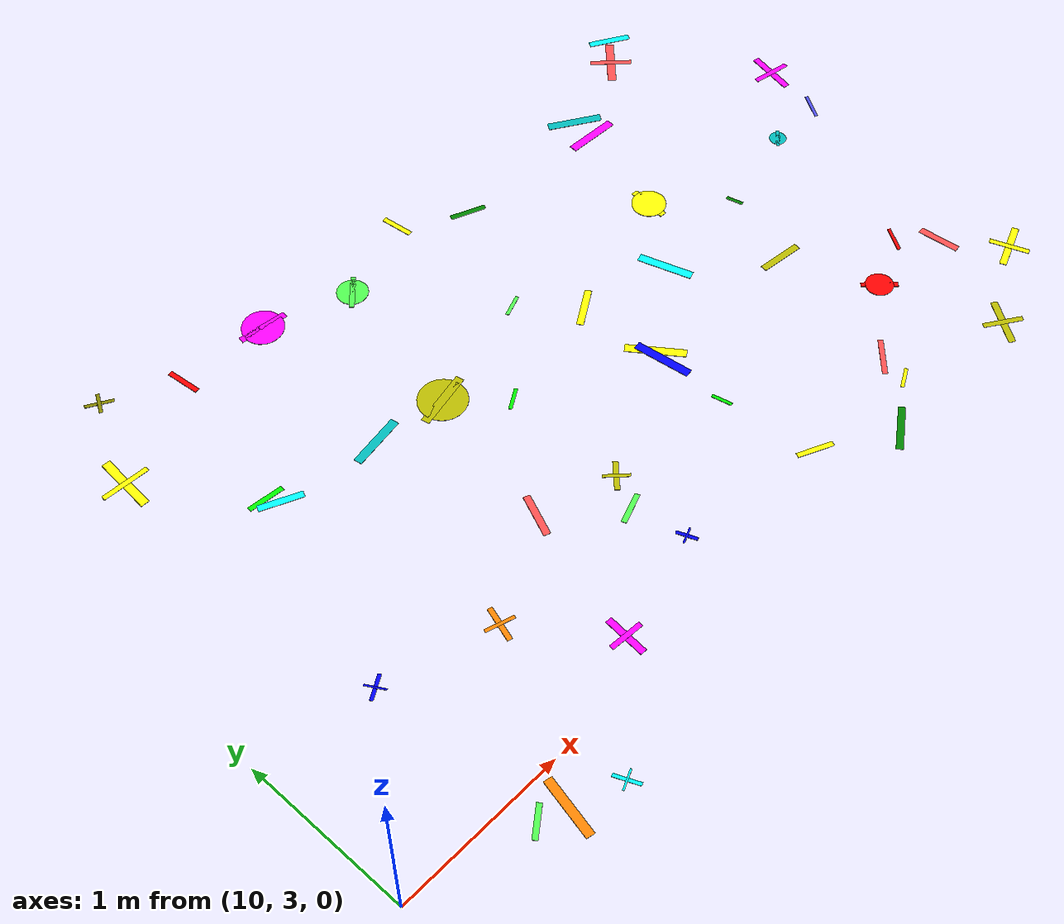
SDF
<sdf version="1.6">
 <world name="default">
  <model name="letter_R_1977">
   <static>true</static>
   <pose>10.71 2.84 0.011 0 0 3.788</pose>
   <link name="link">
    <visual name="visual">
     <geometry><box><size>0.19 0.03 0.002</size></box></geometry>
     <material>
      <ambient>0.3 1.0 0.3 1</ambient>
      <diffuse>0.3 1.0 0.3 1</diffuse>
      <specular>0.1 0.1 0.1 1</specular>
     </material>
    </visual>
   </link>
  </model>
  <model name="letter_N_1978">
   <static>true</static>
   <pose>10.86 2.78 0.012 0 0 1.360</pose>
   <link name="link">
    <visual name="visual">
     <geometry><box><size>0.35 0.05 0.002</size></box></geometry>
     <material>
      <ambient>1.0 0.5 0.0 1</ambient>
      <diffuse>1.0 0.5 0.0 1</diffuse>
      <specular>0.1 0.1 0.1 1</specular>
     </material>
    </visual>
   </link>
  </model>
  <model name="letter_L_1979">
   <static>true</static>
   <pose>11.15 2.68 0.006 0 0 1.985</pose>
   <link name="link">
    <visual name="visual">
     <geometry><box><size>0.15 0.02 0.002</size></box></geometry>
     <material>
      <ambient>0.0 1.0 1.0 1</ambient>
      <diffuse>0.0 1.0 1.0 1</diffuse>
      <specular>0.1 0.1 0.1 1</specular>
     </material>
    </visual>
    <visual name="visual2">
     <pose>0 0 0.001 0 0 1.57</pose>
     <geometry><box><size>0.12 0.01 0.001</size></box></geometry>
     <material><ambient>0.0 1.0 1.0 1</ambient><diffuse>0.0 1.0 1.0 1</diffuse></material>
    </visual>
   </link>
  </model>
  <model name="letter_L_1980">
   <static>true</static>
   <pose>11.35 3.70 0.007 0 0 1.274</pose>
   <link name="link">
    <visual name="visual">
     <geometry><box><size>0.21 0.03 0.002</size></box></geometry>
     <material>
      <ambient>1.0 0.5 0.0 1</ambient>
      <diffuse>1.0 0.5 0.0 1</diffuse>
      <specular>0.1 0.1 0.1 1</specular>
     </material>
    </visual>
    <visual name="visual2">
     <pose>0 0 0.001 0 0 1.57</pose>
     <geometry><box><size>0.17 0.02 0.001</size></box></geometry>
     <material><ambient>1.0 0.5 0.0 1</ambient><diffuse>1.0 0.5 0.0 1</diffuse></material>
    </visual>
   </link>
  </model>
  <model name="letter_F_1981">
   <static>true</static>
   <pose>10.69 3.89 0.009 0 0 3.674</pose>
   <link name="link">
    <visual name="visual">
     <geometry><box><size>0.15 0.02 0.002</size></box></geometry>
     <material>
      <ambient>0.0 0.0 1.0 1</ambient>
      <diffuse>0.0 0.0 1.0 1</diffuse>
      <specular>0.1 0.1 0.1 1</specular>
     </material>
    </visual>
    <visual name="visual2">
     <pose>0 0 0.001 0 0 1.57</pose>
     <geometry><box><size>0.12 0.01 0.001</size></box></geometry>
     <material><ambient>0.0 0.0 1.0 1</ambient><diffuse>0.0 0.0 1.0 1</diffuse></material>
    </visual>
   </link>
  </model>
  <model name="letter_X_1982">
   <static>true</static>
   <pose>11.11 5.03 0.009 0 0 2.706</pose>
   <link name="link">
    <visual name="visual">
     <geometry><box><size>0.25 0.04 0.002</size></box></geometry>
     <material>
      <ambient>0.0 1.0 1.0 1</ambient>
      <diffuse>0.0 1.0 1.0 1</diffuse>
      <specular>0.1 0.1 0.1 1</specular>
     </material>
    </visual>
   </link>
  </model>
  <model name="letter_X_1983">
   <static>true</static>
   <pose>11.07 5.10 0.005 0 0 3.029</pose>
   <link name="link">
    <visual name="visual">
     <geometry><box><size>0.21 0.03 0.002</size></box></geometry>
     <material>
      <ambient>0.0 1.0 0.0 1</ambient>
      <diffuse>0.0 1.0 0.0 1</diffuse>
      <specular>0.1 0.1 0.1 1</specular>
     </material>
    </visual>
   </link>
  </model>
  <model name="letter_H_1984">
   <static>true</static>
   <pose>10.88 6.21 0.004 0 0 2.612</pose>
   <link name="link">
    <visual name="visual">
     <geometry><box><size>0.16 0.02 0.002</size></box></geometry>
     <material>
      <ambient>0.5 0.5 0.0 1</ambient>
      <diffuse>0.5 0.5 0.0 1</diffuse>
      <specular>0.1 0.1 0.1 1</specular>
     </material>
    </visual>
    <visual name="visual2">
     <pose>0 0 0.001 0 0 1.57</pose>
     <geometry><box><size>0.13 0.02 0.001</size></box></geometry>
     <material><ambient>0.5 0.5 0.0 1</ambient><diffuse>0.5 0.5 0.0 1</diffuse></material>
    </visual>
   </link>
  </model>
  <model name="letter_E_1985">
   <static>true</static>
   <pose>10.64 5.70 0.009 0 0 4.642</pose>
   <link name="link">
    <visual name="visual">
     <geometry><box><size>0.35 0.05 0.002</size></box></geometry>
     <material>
      <ambient>1.0 1.0 0.0 1</ambient>
      <diffuse>1.0 1.0 0.0 1</diffuse>
      <specular>0.1 0.1 0.1 1</specular>
     </material>
    </visual>
    <visual name="visual2">
     <pose>0 0 0.001 0 0 1.57</pose>
     <geometry><box><size>0.28 0.03 0.001</size></box></geometry>
     <material><ambient>1.0 1.0 0.0 1</ambient><diffuse>1.0 1.0 0.0 1</diffuse></material>
    </visual>
   </link>
  </model>
  <model name="letter_K_1986">
   <static>true</static>
   <pose>11.28 5.99 0.008 0 0 1.677</pose>
   <link name="link">
    <visual name="visual">
     <geometry><box><size>0.20 0.03 0.002</size></box></geometry>
     <material>
      <ambient>1.0 0.0 0.0 1</ambient>
      <diffuse>1.0 0.0 0.0 1</diffuse>
      <specular>0.1 0.1 0.1 1</specular>
     </material>
    </visual>
   </link>
  </model>
  <model name="letter_E_2049">
   <static>true</static>
   <pose>11.72 3.20 0.009 0 0 4.638</pose>
   <link name="link">
    <visual name="visual">
     <geometry><box><size>0.25 0.04 0.002</size></box></geometry>
     <material>
      <ambient>1.0 0.0 1.0 1</ambient>
      <diffuse>1.0 0.0 1.0 1</diffuse>
      <specular>0.1 0.1 0.1 1</specular>
     </material>
    </visual>
    <visual name="visual2">
     <pose>0 0 0.001 0 0 1.57</pose>
     <geometry><box><size>0.20 0.03 0.001</size></box></geometry>
     <material><ambient>1.0 0.0 1.0 1</ambient><diffuse>1.0 0.0 1.0 1</diffuse></material>
    </visual>
   </link>
  </model>
  <model name="letter_H_2051">
   <static>true</static>
   <pose>12.37 3.37 0.003 0 0 1.952</pose>
   <link name="link">
    <visual name="visual">
     <geometry><box><size>0.12 0.02 0.002</size></box></geometry>
     <material>
      <ambient>0.0 0.0 1.0 1</ambient>
      <diffuse>0.0 0.0 1.0 1</diffuse>
      <specular>0.1 0.1 0.1 1</specular>
     </material>
    </visual>
    <visual name="visual2">
     <pose>0 0 0.001 0 0 1.57</pose>
     <geometry><box><size>0.10 0.01 0.001</size></box></geometry>
     <material><ambient>0.0 0.0 1.0 1</ambient><diffuse>0.0 0.0 1.0 1</diffuse></material>
    </visual>
   </link>
  </model>
  <model name="letter_D_2052">
   <static>true</static>
   <pose>12.30 3.69 0.005 0 0 3.494</pose>
   <link name="link">
    <visual name="visual">
     <geometry><box><size>0.19 0.03 0.002</size></box></geometry>
     <material>
      <ambient>0.3 1.0 0.3 1</ambient>
      <diffuse>0.3 1.0 0.3 1</diffuse>
      <specular>0.1 0.1 0.1 1</specular>
     </material>
    </visual>
   </link>
  </model>
  <model name="letter_I_2053">
   <static>true</static>
   <pose>12.40 3.88 0.007 0 0 0.793</pose>
   <link name="link">
    <visual name="visual">
     <geometry><box><size>0.18 0.03 0.002</size></box></geometry>
     <material>
      <ambient>0.7 0.7 0.0 1</ambient>
      <diffuse>0.7 0.7 0.0 1</diffuse>
      <specular>0.1 0.1 0.1 1</specular>
     </material>
    </visual>
    <visual name="visual2">
     <pose>0 0 0.001 0 0 1.57</pose>
     <geometry><box><size>0.15 0.02 0.001</size></box></geometry>
     <material><ambient>0.7 0.7 0.0 1</ambient><diffuse>0.7 0.7 0.0 1</diffuse></material>
    </visual>
   </link>
  </model>
  <model name="letter_J_2054">
   <static>true</static>
   <pose>11.94 4.01 0.008 0 0 1.182</pose>
   <link name="link">
    <visual name="visual">
     <geometry><box><size>0.26 0.04 0.002</size></box></geometry>
     <material>
      <ambient>1.0 0.3 0.3 1</ambient>
      <diffuse>1.0 0.3 0.3 1</diffuse>
      <specular>0.1 0.1 0.1 1</specular>
     </material>
    </visual>
   </link>
  </model>
  <model name="letter_Q_2055">
   <static>true</static>
   <pose>12.14 4.89 0.004 0 0 3.350</pose>
   <link name="link">
    <visual name="visual">
     <geometry><box><size>0.34 0.05 0.002</size></box></geometry>
     <material>
      <ambient>0.7 0.7 0.0 1</ambient>
      <diffuse>0.7 0.7 0.0 1</diffuse>
      <specular>0.1 0.1 0.1 1</specular>
     </material>
    </visual>
    <visual name="visual2">
     <geometry><cylinder><radius>0.14</radius><length>0.002</length></cylinder></geometry>
     <material><ambient>0.7 0.7 0.0 1</ambient><diffuse>0.7 0.7 0.0 1</diffuse></material>
    </visual>
   </link>
  </model>
  <model name="letter_Z_2056">
   <static>true</static>
   <pose>12.40 4.62 0.004 0 0 0.543</pose>
   <link name="link">
    <visual name="visual">
     <geometry><box><size>0.14 0.02 0.002</size></box></geometry>
     <material>
      <ambient>0.0 1.0 0.0 1</ambient>
      <diffuse>0.0 1.0 0.0 1</diffuse>
      <specular>0.1 0.1 0.1 1</specular>
     </material>
    </visual>
   </link>
  </model>
  <model name="letter_D_2057">
   <static>true</static>
   <pose>11.71 4.95 0.003 0 0 3.293</pose>
   <link name="link">
    <visual name="visual">
     <geometry><box><size>0.32 0.05 0.002</size></box></geometry>
     <material>
      <ambient>0.0 0.7 0.7 1</ambient>
      <diffuse>0.0 0.7 0.7 1</diffuse>
      <specular>0.1 0.1 0.1 1</specular>
     </material>
    </visual>
   </link>
  </model>
  <model name="letter_G_2058">
   <static>true</static>
   <pose>11.82 5.96 0.011 0 0 6.152</pose>
   <link name="link">
    <visual name="visual">
     <geometry><box><size>0.29 0.04 0.002</size></box></geometry>
     <material>
      <ambient>1.0 0.0 1.0 1</ambient>
      <diffuse>1.0 0.0 1.0 1</diffuse>
      <specular>0.1 0.1 0.1 1</specular>
     </material>
    </visual>
    <visual name="visual2">
     <geometry><cylinder><radius>0.12</radius><length>0.002</length></cylinder></geometry>
     <material><ambient>1.0 0.0 1.0 1</ambient><diffuse>1.0 0.0 1.0 1</diffuse></material>
    </visual>
   </link>
  </model>
  <model name="letter_Q_2059">
   <static>true</static>
   <pose>12.33 5.79 0.006 0 0 3.908</pose>
   <link name="link">
    <visual name="visual">
     <geometry><box><size>0.22 0.03 0.002</size></box></geometry>
     <material>
      <ambient>0.3 1.0 0.3 1</ambient>
      <diffuse>0.3 1.0 0.3 1</diffuse>
      <specular>0.1 0.1 0.1 1</specular>
     </material>
    </visual>
    <visual name="visual2">
     <geometry><cylinder><radius>0.09</radius><length>0.002</length></cylinder></geometry>
     <material><ambient>0.3 1.0 0.3 1</ambient><diffuse>0.3 1.0 0.3 1</diffuse></material>
    </visual>
   </link>
  </model>
  <model name="letter_V_2131">
   <static>true</static>
   <pose>13.23 3.23 0.009 0 0 2.707</pose>
   <link name="link">
    <visual name="visual">
     <geometry><box><size>0.21 0.03 0.002</size></box></geometry>
     <material>
      <ambient>1.0 1.0 0.0 1</ambient>
      <diffuse>1.0 1.0 0.0 1</diffuse>
      <specular>0.1 0.1 0.1 1</specular>
     </material>
    </visual>
   </link>
  </model>
  <model name="letter_M_2132">
   <static>true</static>
   <pose>13.15 3.80 0.005 0 0 4.944</pose>
   <link name="link">
    <visual name="visual">
     <geometry><box><size>0.12 0.02 0.002</size></box></geometry>
     <material>
      <ambient>0.0 1.0 0.0 1</ambient>
      <diffuse>0.0 1.0 0.0 1</diffuse>
      <specular>0.1 0.1 0.1 1</specular>
     </material>
    </visual>
   </link>
  </model>
  <model name="letter_K_2133">
   <static>true</static>
   <pose>13.16 4.28 0.009 0 0 5.344</pose>
   <link name="link">
    <visual name="visual">
     <geometry><box><size>0.34 0.05 0.002</size></box></geometry>
     <material>
      <ambient>1.0 1.0 0.0 1</ambient>
      <diffuse>1.0 1.0 0.0 1</diffuse>
      <specular>0.1 0.1 0.1 1</specular>
     </material>
    </visual>
   </link>
  </model>
  <model name="letter_K_2134">
   <static>true</static>
   <pose>13.14 4.21 0.012 0 0 1.706</pose>
   <link name="link">
    <visual name="visual">
     <geometry><box><size>0.34 0.05 0.002</size></box></geometry>
     <material>
      <ambient>0.0 0.0 1.0 1</ambient>
      <diffuse>0.0 0.0 1.0 1</diffuse>
      <specular>0.1 0.1 0.1 1</specular>
     </material>
    </visual>
   </link>
  </model>
  <model name="letter_K_2135">
   <static>true</static>
   <pose>13.12 4.77 0.011 0 0 3.701</pose>
   <link name="link">
    <visual name="visual">
     <geometry><box><size>0.25 0.04 0.002</size></box></geometry>
     <material>
      <ambient>1.0 1.0 0.0 1</ambient>
      <diffuse>1.0 1.0 0.0 1</diffuse>
      <specular>0.1 0.1 0.1 1</specular>
     </material>
    </visual>
   </link>
  </model>
  <model name="letter_D_2136">
   <static>true</static>
   <pose>12.86 5.07 0.010 0 0 0.356</pose>
   <link name="link">
    <visual name="visual">
     <geometry><box><size>0.14 0.02 0.002</size></box></geometry>
     <material>
      <ambient>0.3 1.0 0.3 1</ambient>
      <diffuse>0.3 1.0 0.3 1</diffuse>
      <specular>0.1 0.1 0.1 1</specular>
     </material>
    </visual>
   </link>
  </model>
  <model name="letter_N_2138">
   <static>true</static>
   <pose>12.84 5.96 0.009 0 0 4.835</pose>
   <link name="link">
    <visual name="visual">
     <geometry><box><size>0.19 0.03 0.002</size></box></geometry>
     <material>
      <ambient>1.0 1.0 0.0 1</ambient>
      <diffuse>1.0 1.0 0.0 1</diffuse>
      <specular>0.1 0.1 0.1 1</specular>
     </material>
    </visual>
   </link>
  </model>
  <model name="letter_U_2139">
   <static>true</static>
   <pose>13.19 5.74 0.012 0 0 2.742</pose>
   <link name="link">
    <visual name="visual">
     <geometry><box><size>0.21 0.03 0.002</size></box></geometry>
     <material>
      <ambient>0.0 0.5 0.0 1</ambient>
      <diffuse>0.0 0.5 0.0 1</diffuse>
      <specular>0.1 0.1 0.1 1</specular>
     </material>
    </visual>
   </link>
  </model>
  <model name="letter_V_2207">
   <static>true</static>
   <pose>13.96 3.35 0.013 0 0 0.765</pose>
   <link name="link">
    <visual name="visual">
     <geometry><box><size>0.23 0.03 0.002</size></box></geometry>
     <material>
      <ambient>1.0 0.3 0.3 1</ambient>
      <diffuse>1.0 0.3 0.3 1</diffuse>
      <specular>0.1 0.1 0.1 1</specular>
     </material>
    </visual>
   </link>
  </model>
  <model name="letter_R_2208">
   <static>true</static>
   <pose>13.93 3.18 0.006 0 0 0.490</pose>
   <link name="link">
    <visual name="visual">
     <geometry><box><size>0.13 0.02 0.002</size></box></geometry>
     <material>
      <ambient>1.0 1.0 0.0 1</ambient>
      <diffuse>1.0 1.0 0.0 1</diffuse>
      <specular>0.1 0.1 0.1 1</specular>
     </material>
    </visual>
   </link>
  </model>
  <model name="letter_M_2209">
   <static>true</static>
   <pose>13.65 2.99 0.003 0 0 3.748</pose>
   <link name="link">
    <visual name="visual">
     <geometry><box><size>0.28 0.04 0.002</size></box></geometry>
     <material>
      <ambient>0.0 0.5 0.0 1</ambient>
      <diffuse>0.0 0.5 0.0 1</diffuse>
      <specular>0.1 0.1 0.1 1</specular>
     </material>
    </visual>
   </link>
  </model>
  <model name="letter_Q_2210">
   <static>true</static>
   <pose>14.36 3.68 0.010 0 0 2.325</pose>
   <link name="link">
    <visual name="visual">
     <geometry><box><size>0.21 0.03 0.002</size></box></geometry>
     <material>
      <ambient>1.0 0.0 0.0 1</ambient>
      <diffuse>1.0 0.0 0.0 1</diffuse>
      <specular>0.1 0.1 0.1 1</specular>
     </material>
    </visual>
    <visual name="visual2">
     <geometry><cylinder><radius>0.08</radius><length>0.002</length></cylinder></geometry>
     <material><ambient>1.0 0.0 0.0 1</ambient><diffuse>1.0 0.0 0.0 1</diffuse></material>
    </visual>
   </link>
  </model>
  <model name="letter_P_2211">
   <static>true</static>
   <pose>14.14 4.21 0.012 0 0 3.020</pose>
   <link name="link">
    <visual name="visual">
     <geometry><box><size>0.26 0.04 0.002</size></box></geometry>
     <material>
      <ambient>0.7 0.7 0.0 1</ambient>
      <diffuse>0.7 0.7 0.0 1</diffuse>
      <specular>0.1 0.1 0.1 1</specular>
     </material>
    </visual>
   </link>
  </model>
  <model name="letter_V_2212">
   <static>true</static>
   <pose>14.30 4.68 0.011 0 0 4.970</pose>
   <link name="link">
    <visual name="visual">
     <geometry><box><size>0.10 0.02 0.002</size></box></geometry>
     <material>
      <ambient>0.0 0.5 0.0 1</ambient>
      <diffuse>0.0 0.5 0.0 1</diffuse>
      <specular>0.1 0.1 0.1 1</specular>
     </material>
    </visual>
   </link>
  </model>
  <model name="letter_R_2213">
   <static>true</static>
   <pose>13.65 4.64 0.012 0 0 5.022</pose>
   <link name="link">
    <visual name="visual">
     <geometry><box><size>0.32 0.05 0.002</size></box></geometry>
     <material>
      <ambient>0.0 1.0 1.0 1</ambient>
      <diffuse>0.0 1.0 1.0 1</diffuse>
      <specular>0.1 0.1 0.1 1</specular>
     </material>
    </visual>
   </link>
  </model>
  <model name="letter_G_2214">
   <static>true</static>
   <pose>13.95 5.03 0.005 0 0 1.492</pose>
   <link name="link">
    <visual name="visual">
     <geometry><box><size>0.24 0.04 0.002</size></box></geometry>
     <material>
      <ambient>1.0 1.0 0.0 1</ambient>
      <diffuse>1.0 1.0 0.0 1</diffuse>
      <specular>0.1 0.1 0.1 1</specular>
     </material>
    </visual>
    <visual name="visual2">
     <geometry><cylinder><radius>0.10</radius><length>0.002</length></cylinder></geometry>
     <material><ambient>1.0 1.0 0.0 1</ambient><diffuse>1.0 1.0 0.0 1</diffuse></material>
    </visual>
   </link>
  </model>
  <model name="letter_K_2215">
   <static>true</static>
   <pose>14.13 5.64 0.004 0 0 6.229</pose>
   <link name="link">
    <visual name="visual">
     <geometry><box><size>0.31 0.05 0.002</size></box></geometry>
     <material>
      <ambient>1.0 0.0 1.0 1</ambient>
      <diffuse>1.0 0.0 1.0 1</diffuse>
      <specular>0.1 0.1 0.1 1</specular>
     </material>
    </visual>
   </link>
  </model>
  <model name="letter_R_2216">
   <static>true</static>
   <pose>14.14 5.79 0.008 0 0 5.718</pose>
   <link name="link">
    <visual name="visual">
     <geometry><box><size>0.32 0.05 0.002</size></box></geometry>
     <material>
      <ambient>0.0 0.7 0.7 1</ambient>
      <diffuse>0.0 0.7 0.7 1</diffuse>
      <specular>0.1 0.1 0.1 1</specular>
     </material>
    </visual>
   </link>
  </model>
  <model name="letter_E_2288">
   <static>true</static>
   <pose>15.09 3.32 0.005 0 0 3.512</pose>
   <link name="link">
    <visual name="visual">
     <geometry><box><size>0.29 0.04 0.002</size></box></geometry>
     <material>
      <ambient>1.0 1.0 0.0 1</ambient>
      <diffuse>1.0 1.0 0.0 1</diffuse>
      <specular>0.1 0.1 0.1 1</specular>
     </material>
    </visual>
    <visual name="visual2">
     <pose>0 0 0.001 0 0 1.57</pose>
     <geometry><box><size>0.23 0.03 0.001</size></box></geometry>
     <material><ambient>1.0 1.0 0.0 1</ambient><diffuse>1.0 1.0 0.0 1</diffuse></material>
    </visual>
   </link>
  </model>
  <model name="letter_T_2289">
   <static>true</static>
   <pose>14.61 3.02 0.004 0 0 4.118</pose>
   <link name="link">
    <visual name="visual">
     <geometry><box><size>0.29 0.04 0.002</size></box></geometry>
     <material>
      <ambient>0.7 0.7 0.0 1</ambient>
      <diffuse>0.7 0.7 0.0 1</diffuse>
      <specular>0.1 0.1 0.1 1</specular>
     </material>
    </visual>
    <visual name="visual2">
     <pose>0 0 0.001 0 0 1.57</pose>
     <geometry><box><size>0.23 0.03 0.001</size></box></geometry>
     <material><ambient>0.7 0.7 0.0 1</ambient><diffuse>0.7 0.7 0.0 1</diffuse></material>
    </visual>
   </link>
  </model>
  <model name="letter_Y_2290">
   <static>true</static>
   <pose>14.69 3.83 0.004 0 0 4.164</pose>
   <link name="link">
    <visual name="visual">
     <geometry><box><size>0.16 0.02 0.002</size></box></geometry>
     <material>
      <ambient>1.0 0.0 0.0 1</ambient>
      <diffuse>1.0 0.0 0.0 1</diffuse>
      <specular>0.1 0.1 0.1 1</specular>
     </material>
    </visual>
   </link>
  </model>
  <model name="letter_R_2291">
   <static>true</static>
   <pose>14.86 3.64 0.007 0 0 4.821</pose>
   <link name="link">
    <visual name="visual">
     <geometry><box><size>0.24 0.04 0.002</size></box></geometry>
     <material>
      <ambient>1.0 0.3 0.3 1</ambient>
      <diffuse>1.0 0.3 0.3 1</diffuse>
      <specular>0.1 0.1 0.1 1</specular>
     </material>
    </visual>
   </link>
  </model>
  <model name="letter_D_2292">
   <static>true</static>
   <pose>15.20 4.84 0.011 0 0 4.170</pose>
   <link name="link">
    <visual name="visual">
     <geometry><box><size>0.17 0.02 0.002</size></box></geometry>
     <material>
      <ambient>0.3 0.3 1.0 1</ambient>
      <diffuse>0.3 0.3 1.0 1</diffuse>
      <specular>0.1 0.1 0.1 1</specular>
     </material>
    </visual>
   </link>
  </model>
  <model name="letter_C_2293">
   <static>true</static>
   <pose>14.86 4.82 0.006 0 0 3.839</pose>
   <link name="link">
    <visual name="visual">
     <geometry><box><size>0.12 0.02 0.002</size></box></geometry>
     <material>
      <ambient>0.0 0.7 0.7 1</ambient>
      <diffuse>0.0 0.7 0.7 1</diffuse>
      <specular>0.1 0.1 0.1 1</specular>
     </material>
    </visual>
    <visual name="visual2">
     <geometry><cylinder><radius>0.05</radius><length>0.002</length></cylinder></geometry>
     <material><ambient>0.0 0.7 0.7 1</ambient><diffuse>0.0 0.7 0.7 1</diffuse></material>
    </visual>
   </link>
  </model>
  <model name="letter_H_2294">
   <static>true</static>
   <pose>15.26 5.20 0.011 0 0 4.526</pose>
   <link name="link">
    <visual name="visual">
     <geometry><box><size>0.29 0.04 0.002</size></box></geometry>
     <material>
      <ambient>1.0 0.0 1.0 1</ambient>
      <diffuse>1.0 0.0 1.0 1</diffuse>
      <specular>0.1 0.1 0.1 1</specular>
     </material>
    </visual>
    <visual name="visual2">
     <pose>0 0 0.001 0 0 1.57</pose>
     <geometry><box><size>0.23 0.03 0.001</size></box></geometry>
     <material><ambient>1.0 0.0 1.0 1</ambient><diffuse>1.0 0.0 1.0 1</diffuse></material>
    </visual>
   </link>
  </model>
  <model name="letter_U_2295">
   <static>true</static>
   <pose>14.80 6.11 0.012 0 0 5.751</pose>
   <link name="link">
    <visual name="visual">
     <geometry><box><size>0.25 0.04 0.002</size></box></geometry>
     <material>
      <ambient>0.0 1.0 1.0 1</ambient>
      <diffuse>0.0 1.0 1.0 1</diffuse>
      <specular>0.1 0.1 0.1 1</specular>
     </material>
    </visual>
   </link>
  </model>
  <model name="letter_A_2296">
   <static>true</static>
   <pose>14.67 5.98 0.003 0 0 0.791</pose>
   <link name="link">
    <visual name="visual">
     <geometry><box><size>0.31 0.05 0.002</size></box></geometry>
     <material>
      <ambient>1.0 0.3 0.3 1</ambient>
      <diffuse>1.0 0.3 0.3 1</diffuse>
      <specular>0.1 0.1 0.1 1</specular>
     </material>
    </visual>
    <visual name="visual2">
     <pose>0 0 0.001 0 0 1.57</pose>
     <geometry><box><size>0.25 0.03 0.001</size></box></geometry>
     <material><ambient>1.0 0.3 0.3 1</ambient><diffuse>1.0 0.3 0.3 1</diffuse></material>
    </visual>
   </link>
  </model>
 </world>
</sdf>
